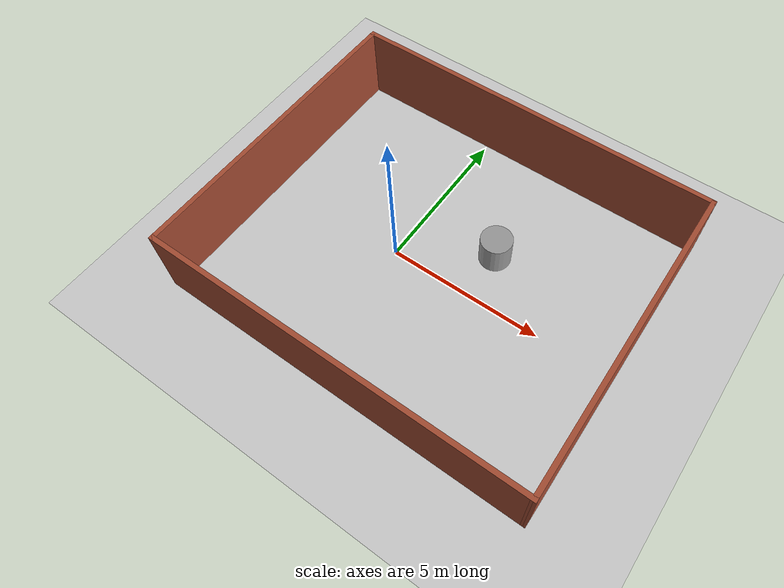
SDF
<sdf version="1.7">
 <world name="default">
  <light name="sun" type="directional">
   <pose>0 0 10 0 -0 0</pose>
   <diffuse>0.8 0.8 0.8 1</diffuse>
   <specular>0.2 0.2 0.2 1</specular>
   <attenuation>
    <range>1000</range>
    <constant>0.9</constant>
    <linear>0.01</linear>
    <quadratic>0.001</quadratic>
   </attenuation>
   <direction>-0.5 0.1 -0.9</direction>
   <spot><inner_angle>0</inner_angle><outer_angle>0</outer_angle><falloff>0</falloff></spot>
  </light>
  <model name="ground_plane">
   <static>1</static>
   <link name="link">
    <collision name="collision">
     <geometry><plane><normal>0 0 1</normal><size>100 100</size></plane></geometry>
     <surface><friction><ode><mu>100</mu><mu2>50</mu2></ode></friction></surface>
    </collision>
    <visual name="visual">
     <cast_shadows>0</cast_shadows>
     <geometry><plane><normal>0 0 1</normal><size>100 100</size></plane></geometry>
     <material>
      <script><uri>file://media/materials/scripts/gazebo.material</uri><name>Gazebo/Grey</name></script>
     </material>
    </visual>
   </link>
  </model>
  <gravity>0 0 -9.8</gravity>
  <magnetic_field>6e-06 2.3e-05 -4.2e-05</magnetic_field>
  <atmosphere type="adiabatic"/>
  <physics type="ode">
   <max_step_size>0.001</max_step_size>
   <real_time_factor>1</real_time_factor>
   <real_time_update_rate>1000</real_time_update_rate>
  </physics>
  <scene><ambient>0.4 0.4 0.4 1</ambient><background>0.7 0.7 0.7 1</background><shadows>1</shadows></scene>
  <audio><device>default</device></audio>
  <spherical_coordinates>
   <surface_model>EARTH_WGS84</surface_model>
   <latitude_deg>0</latitude_deg>
   <longitude_deg>0</longitude_deg>
   <elevation>0</elevation>
   <heading_deg>0</heading_deg>
  </spherical_coordinates>
  <model name="Walls">
   <pose>1.35017 0.314817 0 0 -0 0</pose>
   <link name="Wall_0">
    <collision name="Wall_0_Collision">
     <geometry><box><size>12.25 0.15 2.5</size></box></geometry>
     <pose>0 0 1.25 0 -0 0</pose>
    </collision>
    <visual name="Wall_0_Visual">
     <pose>0 0 1.25 0 -0 0</pose>
     <geometry><box><size>12.25 0.15 2.5</size></box></geometry>
     <material>
      <script><uri>file://media/materials/scripts/gazebo.material</uri><name>Gazebo/Bricks</name></script>
      <ambient>0.760784 0.662745 0.627451 1</ambient>
     </material>
     <meta><layer>0</layer></meta>
    </visual>
    <pose>-0.000175 -4.92482 0 0 -0 0</pose>
   </link>
   <link name="Wall_1">
    <collision name="Wall_1_Collision">
     <geometry><box><size>9.97352 0.15 2.5</size></box></geometry>
     <pose>0 0 1.25 0 -0 0</pose>
    </collision>
    <visual name="Wall_1_Visual">
     <pose>0 0 1.25 0 -0 0</pose>
     <geometry><box><size>9.97352 0.15 2.5</size></box></geometry>
     <material>
      <script><uri>file://media/materials/scripts/gazebo.material</uri><name>Gazebo/Bricks</name></script>
      <ambient>0.760784 0.662745 0.627451 1</ambient>
     </material>
     <meta><layer>0</layer></meta>
    </visual>
    <pose>6.02582 -0.013118 0 0 -0 1.57568</pose>
   </link>
   <link name="Wall_2">
    <collision name="Wall_2_Collision">
     <geometry><box><size>12.202 0.15 2.5</size></box></geometry>
     <pose>0 0 1.25 0 -0 0</pose>
    </collision>
    <visual name="Wall_2_Visual">
     <pose>0 0 1.25 0 -0 0</pose>
     <geometry><box><size>12.202 0.15 2.5</size></box></geometry>
     <material>
      <script><uri>file://media/materials/scripts/gazebo.material</uri><name>Gazebo/Bricks</name></script>
      <ambient>0.760784 0.662745 0.627451 1</ambient>
     </material>
     <meta><layer>0</layer></meta>
    </visual>
    <pose>-0.024178 4.92518 0 0 -0 3.14159</pose>
   </link>
   <link name="Wall_3">
    <collision name="Wall_3_Collision">
     <geometry><box><size>10 0.15 2.5</size></box></geometry>
     <pose>0 0 1.25 0 -0 0</pose>
    </collision>
    <visual name="Wall_3_Visual">
     <pose>0 0 1.25 0 -0 0</pose>
     <geometry><box><size>10 0.15 2.5</size></box></geometry>
     <material>
      <script><uri>file://media/materials/scripts/gazebo.material</uri><name>Gazebo/Bricks</name></script>
      <ambient>0.760784 0.662745 0.627451 1</ambient>
     </material>
     <meta><layer>0</layer></meta>
    </visual>
    <pose>-6.05018 0.000183 0 0 -0 -1.5708</pose>
   </link>
   <static>1</static>
  </model>
  <model name="unit_cylinder">
   <pose>2.58148 1.58394 0.499992 -3e-06 -4e-06 -0</pose>
   <link name="link">
    <inertial>
     <mass>1</mass>
     <inertia><ixx>0.145833</ixx><ixy>0</ixy><ixz>0</ixz><iyy>0.145833</iyy><iyz>0</iyz><izz>0.125</izz></inertia>
    </inertial>
    <collision name="collision">
     <geometry><cylinder><radius>0.5</radius><length>1</length></cylinder></geometry>
    </collision>
    <visual name="visual">
     <geometry><cylinder><radius>0.5</radius><length>1</length></cylinder></geometry>
     <material>
      <script><name>Gazebo/Grey</name><uri>file://media/materials/scripts/gazebo.material</uri></script>
     </material>
    </visual>
   </link>
  </model>
 </world>
</sdf>
